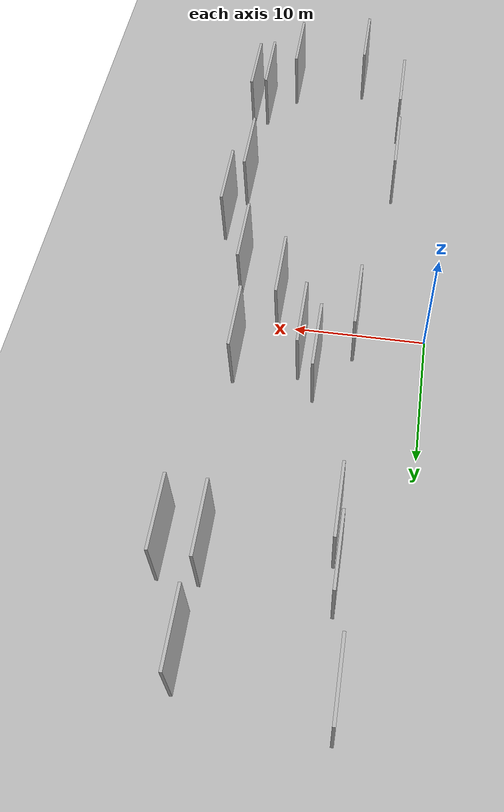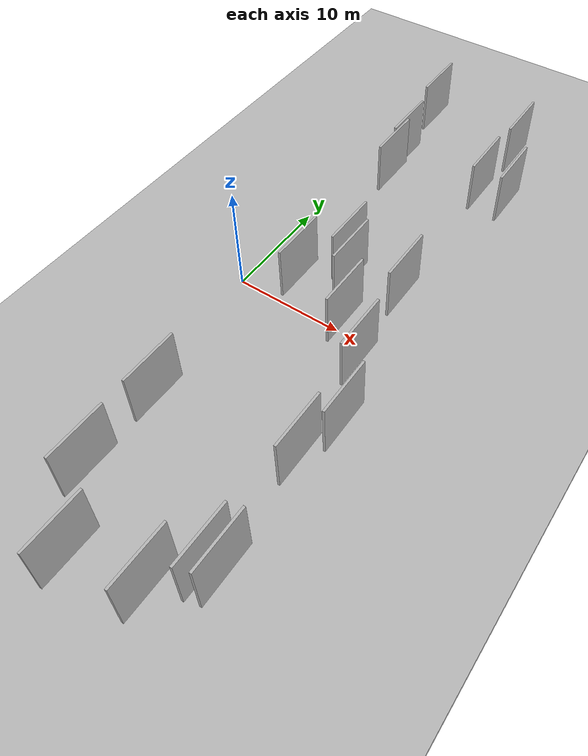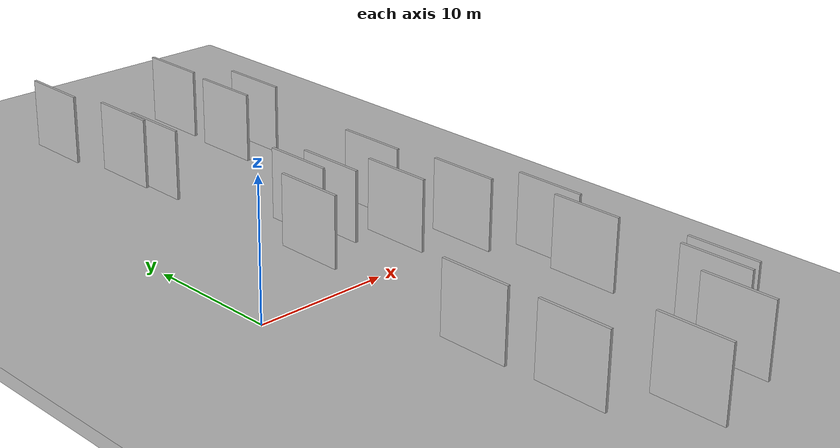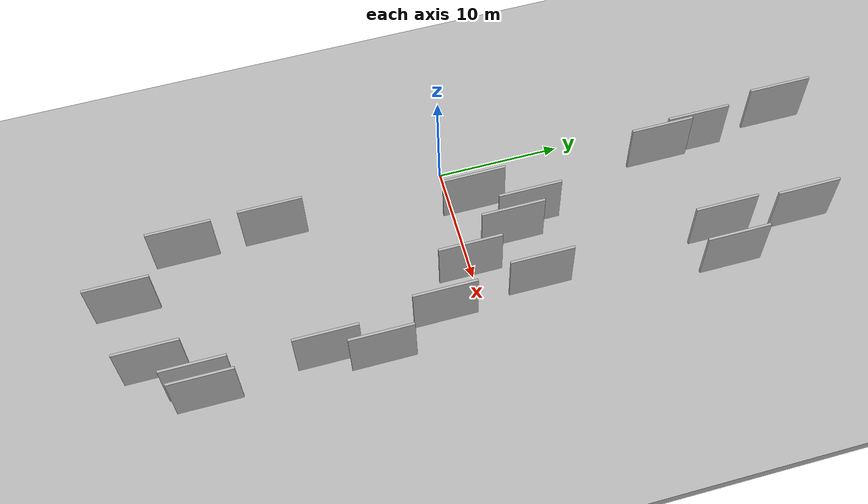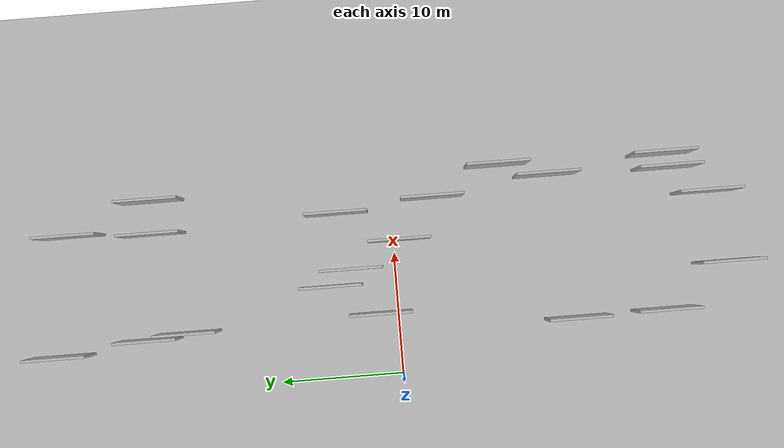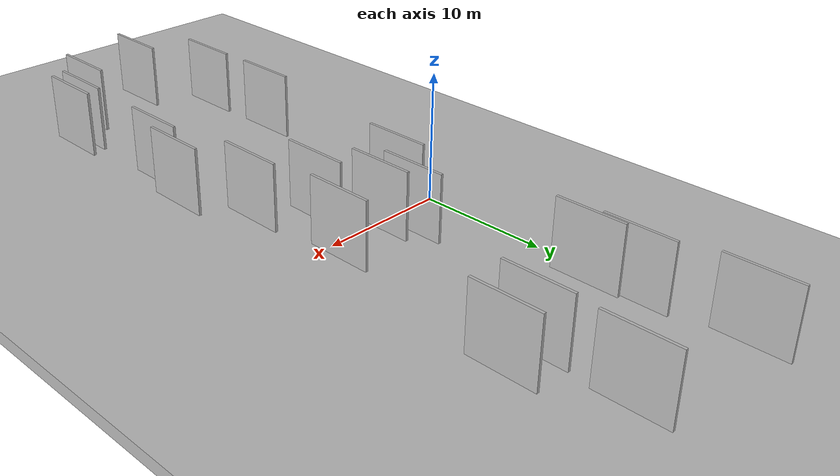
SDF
<?xml version="1.0" encoding="utf-8"?>

<sdf version="1.6">

   <world name="default">

      <gui fullscreen="0">

         <camera name="user_camera">

            <pose>-15 0 4.57585 0 0 0</pose>

            <view_controller>orbit</view_controller>

         </camera>

      </gui>

      <scene>

         <sky>

           <clouds>

             <speed>12</speed>

           </clouds>

         </sky>

         <ambient>0.4 0.4 0.4 1</ambient>

         <background>0.7 0.7 0.7 1</background>

         <shadows>1</shadows>

      </scene>

      <gravity>0 0 -9.8066</gravity>

      <magnetic_field>6e-06 2.3e-05 -4.2e-05</magnetic_field>

      <physics default="0" name="default_physics" type="ode">

         <ode>

            <solver>

               <type>quick</type>

               <iters>10</iters>

               <sor>1.0</sor>

               <use_dynamic_moi_rescaling>0</use_dynamic_moi_rescaling>

            </solver>

            <constraints>

               <cfm>0</cfm>

               <erp>0.2</erp>

               <contact_max_correcting_vel>100</contact_max_correcting_vel>

               <contact_surface_layer>0.001</contact_surface_layer>

            </constraints>

         </ode>

         <max_step_size>0.004</max_step_size>

         <real_time_factor>1</real_time_factor>

         <real_time_update_rate>250</real_time_update_rate>

      </physics>

      <light name="sun" type="directional">

         <cast_shadows>1</cast_shadows>

         <pose>0 0 10 0 0 0</pose>

         <diffuse>0.8 0.8 0.8 1</diffuse>

         <specular>0.2 0.2 0.2 1</specular>

         <attenuation>

            <range>1000</range>

            <constant>0.9</constant>

            <linear>0.01</linear>

            <quadratic>0.001</quadratic>

         </attenuation>

         <direction>-0.5 0.1 -0.9</direction>

      </light>

      <include>

         <name>ground_plane_1</name>

         <uri>model://HANNAS_ground_plane</uri>

         <pose>0 0 0  0 0 0</pose>

      </include>

      <include>

         <name>ground_plane_2</name>

         <uri>model://HANNAS_ground_plane</uri>

         <pose>100 0 0  0 0 0</pose>

      </include>

      <model name="HANNAS_wall_1">

         <static>1</static>

         <pose frame="">11.0139 -0.4642 2.5 0.000000 0.000000 1.570796</pose>

         <link name="link">

            <pose frame="">0 0 2.50 0 0 0</pose>

            <collision name="collision">

               <geometry>

                  <box>

                     <size>5.00 0.2 5.00</size>

                  </box>

               </geometry>

               <max_contacts>10</max_contacts>

               <surface>

                  <contact>

                     <ode/>

                  </contact>

                  <bounce/>

                  <friction>

                     <torsional>

                        <ode/>

                     </torsional>

                     <ode/>

                  </friction>

               </surface>

            </collision>

            <visual name="visual">

               <cast_shadows>0</cast_shadows>

               <geometry>

                  <box>

                     <size>5.00 0.2 5.00</size>

                  </box>

               </geometry>

               <material>

                  <script>

                     <uri>model://HANNAS_wall/materials/scripts</uri>

                     <uri>model://HANNAS_wall/materials/textures</uri>

                     <name>vrc/HANNAS_wall</name>

                  </script>

               </material>

            </visual>

            <self_collide>0</self_collide>

            <enable_wind>0</enable_wind>

            <kinematic>0</kinematic>

         </link>

      </model>

      <model name="HANNAS_wall_2">

         <static>1</static>

         <pose frame="">14.2212 -3.3011 2.5 0.000000 0.000000 1.570796</pose>

         <link name="link">

            <pose frame="">0 0 2.50 0 0 0</pose>

            <collision name="collision">

               <geometry>

                  <box>

                     <size>5.00 0.2 5.00</size>

                  </box>

               </geometry>

               <max_contacts>10</max_contacts>

               <surface>

                  <contact>

                     <ode/>

                  </contact>

                  <bounce/>

                  <friction>

                     <torsional>

                        <ode/>

                     </torsional>

                     <ode/>

                  </friction>

               </surface>

            </collision>

            <visual name="visual">

               <cast_shadows>0</cast_shadows>

               <geometry>

                  <box>

                     <size>5.00 0.2 5.00</size>

                  </box>

               </geometry>

               <material>

                  <script>

                     <uri>model://HANNAS_wall/materials/scripts</uri>

                     <uri>model://HANNAS_wall/materials/textures</uri>

                     <name>vrc/HANNAS_wall</name>

                  </script>

               </material>

            </visual>

            <self_collide>0</self_collide>

            <enable_wind>0</enable_wind>

            <kinematic>0</kinematic>

         </link>

      </model>

      <model name="HANNAS_wall_3">

         <static>1</static>

         <pose frame="">3.6842 27.2978 2.5 0.000000 0.000000 1.570796</pose>

         <link name="link">

            <pose frame="">0 0 2.50 0 0 0</pose>

            <collision name="collision">

               <geometry>

                  <box>

                     <size>5.00 0.2 5.00</size>

                  </box>

               </geometry>

               <max_contacts>10</max_contacts>

               <surface>

                  <contact>

                     <ode/>

                  </contact>

                  <bounce/>

                  <friction>

                     <torsional>

                        <ode/>

                     </torsional>

                     <ode/>

                  </friction>

               </surface>

            </collision>

            <visual name="visual">

               <cast_shadows>0</cast_shadows>

               <geometry>

                  <box>

                     <size>5.00 0.2 5.00</size>

                  </box>

               </geometry>

               <material>

                  <script>

                     <uri>model://HANNAS_wall/materials/scripts</uri>

                     <uri>model://HANNAS_wall/materials/textures</uri>

                     <name>vrc/HANNAS_wall</name>

                  </script>

               </material>

            </visual>

            <self_collide>0</self_collide>

            <enable_wind>0</enable_wind>

            <kinematic>0</kinematic>

         </link>

      </model>

      <model name="HANNAS_wall_4">

         <static>1</static>

         <pose frame="">13.4895 4.4041 2.5 0.000000 0.000000 1.570796</pose>

         <link name="link">

            <pose frame="">0 0 2.50 0 0 0</pose>

            <collision name="collision">

               <geometry>

                  <box>

                     <size>5.00 0.2 5.00</size>

                  </box>

               </geometry>

               <max_contacts>10</max_contacts>

               <surface>

                  <contact>

                     <ode/>

                  </contact>

                  <bounce/>

                  <friction>

                     <torsional>

                        <ode/>

                     </torsional>

                     <ode/>

                  </friction>

               </surface>

            </collision>

            <visual name="visual">

               <cast_shadows>0</cast_shadows>

               <geometry>

                  <box>

                     <size>5.00 0.2 5.00</size>

                  </box>

               </geometry>

               <material>

                  <script>

                     <uri>model://HANNAS_wall/materials/scripts</uri>

                     <uri>model://HANNAS_wall/materials/textures</uri>

                     <name>vrc/HANNAS_wall</name>

                  </script>

               </material>

            </visual>

            <self_collide>0</self_collide>

            <enable_wind>0</enable_wind>

            <kinematic>0</kinematic>

         </link>

      </model>

      <model name="HANNAS_wall_5">

         <static>1</static>

         <pose frame="">7.6783 5.2277 2.5 0.000000 0.000000 1.570796</pose>

         <link name="link">

            <pose frame="">0 0 2.50 0 0 0</pose>

            <collision name="collision">

               <geometry>

                  <box>

                     <size>5.00 0.2 5.00</size>

                  </box>

               </geometry>

               <max_contacts>10</max_contacts>

               <surface>

                  <contact>

                     <ode/>

                  </contact>

                  <bounce/>

                  <friction>

                     <torsional>

                        <ode/>

                     </torsional>

                     <ode/>

                  </friction>

               </surface>

            </collision>

            <visual name="visual">

               <cast_shadows>0</cast_shadows>

               <geometry>

                  <box>

                     <size>5.00 0.2 5.00</size>

                  </box>

               </geometry>

               <material>

                  <script>

                     <uri>model://HANNAS_wall/materials/scripts</uri>

                     <uri>model://HANNAS_wall/materials/textures</uri>

                     <name>vrc/HANNAS_wall</name>

                  </script>

               </material>

            </visual>

            <self_collide>0</self_collide>

            <enable_wind>0</enable_wind>

            <kinematic>0</kinematic>

         </link>

      </model>

      <model name="HANNAS_wall_6">

         <static>1</static>

         <pose frame="">15.6230 19.2049 2.5 0.000000 0.000000 1.570796</pose>

         <link name="link">

            <pose frame="">0 0 2.50 0 0 0</pose>

            <collision name="collision">

               <geometry>

                  <box>

                     <size>5.00 0.2 5.00</size>

                  </box>

               </geometry>

               <max_contacts>10</max_contacts>

               <surface>

                  <contact>

                     <ode/>

                  </contact>

                  <bounce/>

                  <friction>

                     <torsional>

                        <ode/>

                     </torsional>

                     <ode/>

                  </friction>

               </surface>

            </collision>

            <visual name="visual">

               <cast_shadows>0</cast_shadows>

               <geometry>

                  <box>

                     <size>5.00 0.2 5.00</size>

                  </box>

               </geometry>

               <material>

                  <script>

                     <uri>model://HANNAS_wall/materials/scripts</uri>

                     <uri>model://HANNAS_wall/materials/textures</uri>

                     <name>vrc/HANNAS_wall</name>

                  </script>

               </material>

            </visual>

            <self_collide>0</self_collide>

            <enable_wind>0</enable_wind>

            <kinematic>0</kinematic>

         </link>

      </model>

      <model name="HANNAS_wall_7">

         <static>1</static>

         <pose frame="">15.1578 -22.1963 2.5 0.000000 0.000000 1.570796</pose>

         <link name="link">

            <pose frame="">0 0 2.50 0 0 0</pose>

            <collision name="collision">

               <geometry>

                  <box>

                     <size>5.00 0.2 5.00</size>

                  </box>

               </geometry>

               <max_contacts>10</max_contacts>

               <surface>

                  <contact>

                     <ode/>

                  </contact>

                  <bounce/>

                  <friction>

                     <torsional>

                        <ode/>

                     </torsional>

                     <ode/>

                  </friction>

               </surface>

            </collision>

            <visual name="visual">

               <cast_shadows>0</cast_shadows>

               <geometry>

                  <box>

                     <size>5.00 0.2 5.00</size>

                  </box>

               </geometry>

               <material>

                  <script>

                     <uri>model://HANNAS_wall/materials/scripts</uri>

                     <uri>model://HANNAS_wall/materials/textures</uri>

                     <name>vrc/HANNAS_wall</name>

                  </script>

               </material>

            </visual>

            <self_collide>0</self_collide>

            <enable_wind>0</enable_wind>

            <kinematic>0</kinematic>

         </link>

      </model>

      <model name="HANNAS_wall_8">

         <static>1</static>

         <pose frame="">7.2975 -26.5149 2.5 0.000000 0.000000 1.570796</pose>

         <link name="link">

            <pose frame="">0 0 2.50 0 0 0</pose>

            <collision name="collision">

               <geometry>

                  <box>

                     <size>5.00 0.2 5.00</size>

                  </box>

               </geometry>

               <max_contacts>10</max_contacts>

               <surface>

                  <contact>

                     <ode/>

                  </contact>

                  <bounce/>

                  <friction>

                     <torsional>

                        <ode/>

                     </torsional>

                     <ode/>

                  </friction>

               </surface>

            </collision>

            <visual name="visual">

               <cast_shadows>0</cast_shadows>

               <geometry>

                  <box>

                     <size>5.00 0.2 5.00</size>

                  </box>

               </geometry>

               <material>

                  <script>

                     <uri>model://HANNAS_wall/materials/scripts</uri>

                     <uri>model://HANNAS_wall/materials/textures</uri>

                     <name>vrc/HANNAS_wall</name>

                  </script>

               </material>

            </visual>

            <self_collide>0</self_collide>

            <enable_wind>0</enable_wind>

            <kinematic>0</kinematic>

         </link>

      </model>

      <model name="HANNAS_wall_9">

         <static>1</static>

         <pose frame="">12.9464 19.2431 2.5 0.000000 0.000000 1.570796</pose>

         <link name="link">

            <pose frame="">0 0 2.50 0 0 0</pose>

            <collision name="collision">

               <geometry>

                  <box>

                     <size>5.00 0.2 5.00</size>

                  </box>

               </geometry>

               <max_contacts>10</max_contacts>

               <surface>

                  <contact>

                     <ode/>

                  </contact>

                  <bounce/>

                  <friction>

                     <torsional>

                        <ode/>

                     </torsional>

                     <ode/>

                  </friction>

               </surface>

            </collision>

            <visual name="visual">

               <cast_shadows>0</cast_shadows>

               <geometry>

                  <box>

                     <size>5.00 0.2 5.00</size>

                  </box>

               </geometry>

               <material>

                  <script>

                     <uri>model://HANNAS_wall/materials/scripts</uri>

                     <uri>model://HANNAS_wall/materials/textures</uri>

                     <name>vrc/HANNAS_wall</name>

                  </script>

               </material>

            </visual>

            <self_collide>0</self_collide>

            <enable_wind>0</enable_wind>

            <kinematic>0</kinematic>

         </link>

      </model>

      <model name="HANNAS_wall_10">

         <static>1</static>

         <pose frame="">3.6984 -14.2446 2.5 0.000000 0.000000 1.570796</pose>

         <link name="link">

            <pose frame="">0 0 2.50 0 0 0</pose>

            <collision name="collision">

               <geometry>

                  <box>

                     <size>5.00 0.2 5.00</size>

                  </box>

               </geometry>

               <max_contacts>10</max_contacts>

               <surface>

                  <contact>

                     <ode/>

                  </contact>

                  <bounce/>

                  <friction>

                     <torsional>

                        <ode/>

                     </torsional>

                     <ode/>

                  </friction>

               </surface>

            </collision>

            <visual name="visual">

               <cast_shadows>0</cast_shadows>

               <geometry>

                  <box>

                     <size>5.00 0.2 5.00</size>

                  </box>

               </geometry>

               <material>

                  <script>

                     <uri>model://HANNAS_wall/materials/scripts</uri>

                     <uri>model://HANNAS_wall/materials/textures</uri>

                     <name>vrc/HANNAS_wall</name>

                  </script>

               </material>

            </visual>

            <self_collide>0</self_collide>

            <enable_wind>0</enable_wind>

            <kinematic>0</kinematic>

         </link>

      </model>

      <model name="HANNAS_wall_11">

         <static>1</static>

         <pose frame="">16.3022 -21.8355 2.5 0.000000 0.000000 1.570796</pose>

         <link name="link">

            <pose frame="">0 0 2.50 0 0 0</pose>

            <collision name="collision">

               <geometry>

                  <box>

                     <size>5.00 0.2 5.00</size>

                  </box>

               </geometry>

               <max_contacts>10</max_contacts>

               <surface>

                  <contact>

                     <ode/>

                  </contact>

                  <bounce/>

                  <friction>

                     <torsional>

                        <ode/>

                     </torsional>

                     <ode/>

                  </friction>

               </surface>

            </collision>

            <visual name="visual">

               <cast_shadows>0</cast_shadows>

               <geometry>

                  <box>

                     <size>5.00 0.2 5.00</size>

                  </box>

               </geometry>

               <material>

                  <script>

                     <uri>model://HANNAS_wall/materials/scripts</uri>

                     <uri>model://HANNAS_wall/materials/textures</uri>

                     <name>vrc/HANNAS_wall</name>

                  </script>

               </material>

            </visual>

            <self_collide>0</self_collide>

            <enable_wind>0</enable_wind>

            <kinematic>0</kinematic>

         </link>

      </model>

      <model name="HANNAS_wall_12">

         <static>1</static>

         <pose frame="">16.4116 -8.6584 2.5 0.000000 0.000000 1.570796</pose>

         <link name="link">

            <pose frame="">0 0 2.50 0 0 0</pose>

            <collision name="collision">

               <geometry>

                  <box>

                     <size>5.00 0.2 5.00</size>

                  </box>

               </geometry>

               <max_contacts>10</max_contacts>

               <surface>

                  <contact>

                     <ode/>

                  </contact>

                  <bounce/>

                  <friction>

                     <torsional>

                        <ode/>

                     </torsional>

                     <ode/>

                  </friction>

               </surface>

            </collision>

            <visual name="visual">

               <cast_shadows>0</cast_shadows>

               <geometry>

                  <box>

                     <size>5.00 0.2 5.00</size>

                  </box>

               </geometry>

               <material>

                  <script>

                     <uri>model://HANNAS_wall/materials/scripts</uri>

                     <uri>model://HANNAS_wall/materials/textures</uri>

                     <name>vrc/HANNAS_wall</name>

                  </script>

               </material>

            </visual>

            <self_collide>0</self_collide>

            <enable_wind>0</enable_wind>

            <kinematic>0</kinematic>

         </link>

      </model>

      <model name="HANNAS_wall_13">

         <static>1</static>

         <pose frame="">15.3263 -12.5423 2.5 0.000000 0.000000 1.570796</pose>

         <link name="link">

            <pose frame="">0 0 2.50 0 0 0</pose>

            <collision name="collision">

               <geometry>

                  <box>

                     <size>5.00 0.2 5.00</size>

                  </box>

               </geometry>

               <max_contacts>10</max_contacts>

               <surface>

                  <contact>

                     <ode/>

                  </contact>

                  <bounce/>

                  <friction>

                     <torsional>

                        <ode/>

                     </torsional>

                     <ode/>

                  </friction>

               </surface>

            </collision>

            <visual name="visual">

               <cast_shadows>0</cast_shadows>

               <geometry>

                  <box>

                     <size>5.00 0.2 5.00</size>

                  </box>

               </geometry>

               <material>

                  <script>

                     <uri>model://HANNAS_wall/materials/scripts</uri>

                     <uri>model://HANNAS_wall/materials/textures</uri>

                     <name>vrc/HANNAS_wall</name>

                  </script>

               </material>

            </visual>

            <self_collide>0</self_collide>

            <enable_wind>0</enable_wind>

            <kinematic>0</kinematic>

         </link>

      </model>

      <model name="HANNAS_wall_14">

         <static>1</static>

         <pose frame="">13.0023 -25.2159 2.5 0.000000 0.000000 1.570796</pose>

         <link name="link">

            <pose frame="">0 0 2.50 0 0 0</pose>

            <collision name="collision">

               <geometry>

                  <box>

                     <size>5.00 0.2 5.00</size>

                  </box>

               </geometry>

               <max_contacts>10</max_contacts>

               <surface>

                  <contact>

                     <ode/>

                  </contact>

                  <bounce/>

                  <friction>

                     <torsional>

                        <ode/>

                     </torsional>

                     <ode/>

                  </friction>

               </surface>

            </collision>

            <visual name="visual">

               <cast_shadows>0</cast_shadows>

               <geometry>

                  <box>

                     <size>5.00 0.2 5.00</size>

                  </box>

               </geometry>

               <material>

                  <script>

                     <uri>model://HANNAS_wall/materials/scripts</uri>

                     <uri>model://HANNAS_wall/materials/textures</uri>

                     <name>vrc/HANNAS_wall</name>

                  </script>

               </material>

            </visual>

            <self_collide>0</self_collide>

            <enable_wind>0</enable_wind>

            <kinematic>0</kinematic>

         </link>

      </model>

      <model name="HANNAS_wall_15">

         <static>1</static>

         <pose frame="">4.5015 20.1035 2.5 0.000000 0.000000 1.570796</pose>

         <link name="link">

            <pose frame="">0 0 2.50 0 0 0</pose>

            <collision name="collision">

               <geometry>

                  <box>

                     <size>5.00 0.2 5.00</size>

                  </box>

               </geometry>

               <max_contacts>10</max_contacts>

               <surface>

                  <contact>

                     <ode/>

                  </contact>

                  <bounce/>

                  <friction>

                     <torsional>

                        <ode/>

                     </torsional>

                     <ode/>

                  </friction>

               </surface>

            </collision>

            <visual name="visual">

               <cast_shadows>0</cast_shadows>

               <geometry>

                  <box>

                     <size>5.00 0.2 5.00</size>

                  </box>

               </geometry>

               <material>

                  <script>

                     <uri>model://HANNAS_wall/materials/scripts</uri>

                     <uri>model://HANNAS_wall/materials/textures</uri>

                     <name>vrc/HANNAS_wall</name>

                  </script>

               </material>

            </visual>

            <self_collide>0</self_collide>

            <enable_wind>0</enable_wind>

            <kinematic>0</kinematic>

         </link>

      </model>

      <model name="HANNAS_wall_16">

         <static>1</static>

         <pose frame="">8.9399 3.5014 2.5 0.000000 0.000000 1.570796</pose>

         <link name="link">

            <pose frame="">0 0 2.50 0 0 0</pose>

            <collision name="collision">

               <geometry>

                  <box>

                     <size>5.00 0.2 5.00</size>

                  </box>

               </geometry>

               <max_contacts>10</max_contacts>

               <surface>

                  <contact>

                     <ode/>

                  </contact>

                  <bounce/>

                  <friction>

                     <torsional>

                        <ode/>

                     </torsional>

                     <ode/>

                  </friction>

               </surface>

            </collision>

            <visual name="visual">

               <cast_shadows>0</cast_shadows>

               <geometry>

                  <box>

                     <size>5.00 0.2 5.00</size>

                  </box>

               </geometry>

               <material>

                  <script>

                     <uri>model://HANNAS_wall/materials/scripts</uri>

                     <uri>model://HANNAS_wall/materials/textures</uri>

                     <name>vrc/HANNAS_wall</name>

                  </script>

               </material>

            </visual>

            <self_collide>0</self_collide>

            <enable_wind>0</enable_wind>

            <kinematic>0</kinematic>

         </link>

      </model>

      <model name="HANNAS_wall_17">

         <static>1</static>

         <pose frame="">13.2581 25.8094 2.5 0.000000 0.000000 1.570796</pose>

         <link name="link">

            <pose frame="">0 0 2.50 0 0 0</pose>

            <collision name="collision">

               <geometry>

                  <box>

                     <size>5.00 0.2 5.00</size>

                  </box>

               </geometry>

               <max_contacts>10</max_contacts>

               <surface>

                  <contact>

                     <ode/>

                  </contact>

                  <bounce/>

                  <friction>

                     <torsional>

                        <ode/>

                     </torsional>

                     <ode/>

                  </friction>

               </surface>

            </collision>

            <visual name="visual">

               <cast_shadows>0</cast_shadows>

               <geometry>

                  <box>

                     <size>5.00 0.2 5.00</size>

                  </box>

               </geometry>

               <material>

                  <script>

                     <uri>model://HANNAS_wall/materials/scripts</uri>

                     <uri>model://HANNAS_wall/materials/textures</uri>

                     <name>vrc/HANNAS_wall</name>

                  </script>

               </material>

            </visual>

            <self_collide>0</self_collide>

            <enable_wind>0</enable_wind>

            <kinematic>0</kinematic>

         </link>

      </model>

      <model name="HANNAS_wall_18">

         <static>1</static>

         <pose frame="">3.8279 -21.3043 2.5 0.000000 0.000000 1.570796</pose>

         <link name="link">

            <pose frame="">0 0 2.50 0 0 0</pose>

            <collision name="collision">

               <geometry>

                  <box>

                     <size>5.00 0.2 5.00</size>

                  </box>

               </geometry>

               <max_contacts>10</max_contacts>

               <surface>

                  <contact>

                     <ode/>

                  </contact>

                  <bounce/>

                  <friction>

                     <torsional>

                        <ode/>

                     </torsional>

                     <ode/>

                  </friction>

               </surface>

            </collision>

            <visual name="visual">

               <cast_shadows>0</cast_shadows>

               <geometry>

                  <box>

                     <size>5.00 0.2 5.00</size>

                  </box>

               </geometry>

               <material>

                  <script>

                     <uri>model://HANNAS_wall/materials/scripts</uri>

                     <uri>model://HANNAS_wall/materials/textures</uri>

                     <name>vrc/HANNAS_wall</name>

                  </script>

               </material>

            </visual>

            <self_collide>0</self_collide>

            <enable_wind>0</enable_wind>

            <kinematic>0</kinematic>

         </link>

      </model>

      <model name="HANNAS_wall_19">

         <static>1</static>

         <pose frame="">4.8312 16.9523 2.5 0.000000 0.000000 1.570796</pose>

         <link name="link">

            <pose frame="">0 0 2.50 0 0 0</pose>

            <collision name="collision">

               <geometry>

                  <box>

                     <size>5.00 0.2 5.00</size>

                  </box>

               </geometry>

               <max_contacts>10</max_contacts>

               <surface>

                  <contact>

                     <ode/>

                  </contact>

                  <bounce/>

                  <friction>

                     <torsional>

                        <ode/>

                     </torsional>

                     <ode/>

                  </friction>

               </surface>

            </collision>

            <visual name="visual">

               <cast_shadows>0</cast_shadows>

               <geometry>

                  <box>

                     <size>5.00 0.2 5.00</size>

                  </box>

               </geometry>

               <material>

                  <script>

                     <uri>model://HANNAS_wall/materials/scripts</uri>

                     <uri>model://HANNAS_wall/materials/textures</uri>

                     <name>vrc/HANNAS_wall</name>

                  </script>

               </material>

            </visual>

            <self_collide>0</self_collide>

            <enable_wind>0</enable_wind>

            <kinematic>0</kinematic>

         </link>

      </model>

      <model name="HANNAS_wall_20">

         <static>1</static>

         <pose frame="">5.2424 1.4297 2.5 0.000000 0.000000 1.570796</pose>

         <link name="link">

            <pose frame="">0 0 2.50 0 0 0</pose>

            <collision name="collision">

               <geometry>

                  <box>

                     <size>5.00 0.2 5.00</size>

                  </box>

               </geometry>

               <max_contacts>10</max_contacts>

               <surface>

                  <contact>

                     <ode/>

                  </contact>

                  <bounce/>

                  <friction>

                     <torsional>

                        <ode/>

                     </torsional>

                     <ode/>

                  </friction>

               </surface>

            </collision>

            <visual name="visual">

               <cast_shadows>0</cast_shadows>

               <geometry>

                  <box>

                     <size>5.00 0.2 5.00</size>

                  </box>

               </geometry>

               <material>

                  <script>

                     <uri>model://HANNAS_wall/materials/scripts</uri>

                     <uri>model://HANNAS_wall/materials/textures</uri>

                     <name>vrc/HANNAS_wall</name>

                  </script>

               </material>

            </visual>

            <self_collide>0</self_collide>

            <enable_wind>0</enable_wind>

            <kinematic>0</kinematic>

         </link>

      </model>

   </world>

</sdf>

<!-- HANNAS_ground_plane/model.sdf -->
<sdf version="1.4">
<model name="HANNAS_ground_plane">
  <static>true</static>
    <link name="link">
      <collision name="collision">
        <geometry>
          <plane>
            <normal>0 0 1</normal>
            <size>1000 1000</size>
          </plane>
        </geometry>
        <surface>
          <friction>
            <ode>
              <mu>100</mu>
              <mu2>50</mu2>
            </ode>
          </friction>
        </surface>
      </collision>
      <visual name="visual">
        <cast_shadows>false</cast_shadows>
        <geometry>
          <plane>
            <normal>0 0 1</normal>
            <size>1000 1000</size>
          </plane>
        </geometry>
        <material>
          <script>
            <uri>model://HANNAS_ground_plane/materials/scripts/HANNAS_ground_plane.material</uri>
	    <uri>model://HANNAS_ground_plane/materials/textures</uri>
            <name>HANNASGroundPlane/Image</name>
          </script>
        </material>
      </visual>
    </link>
  </model>
</sdf>
